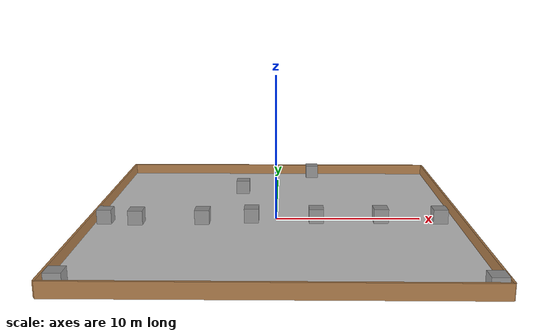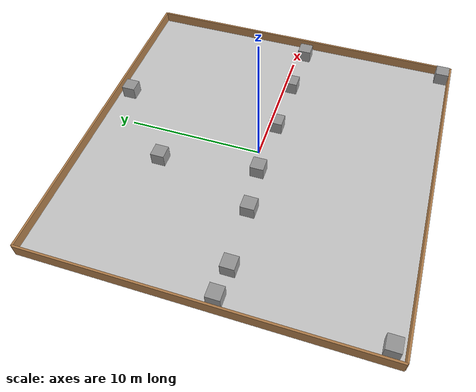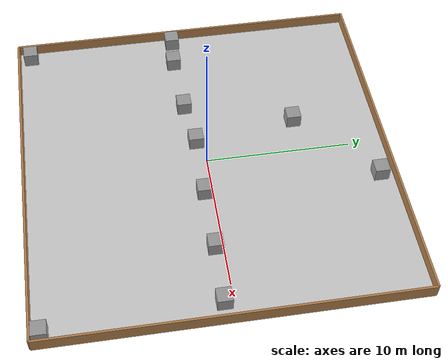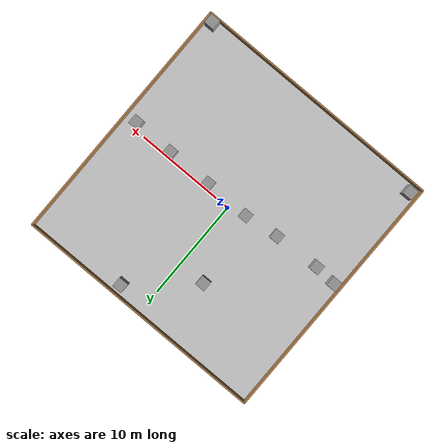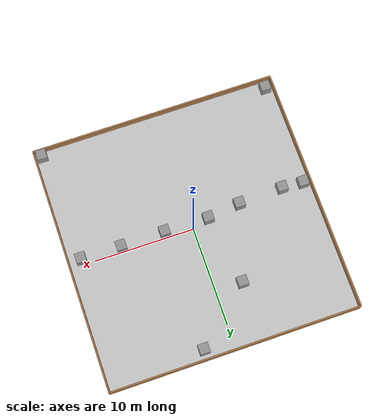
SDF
<sdf version="1.7">
 <world name="default">
  <light name="sun" type="directional">
   <pose>0 0 10 0 -0 0</pose>
   <diffuse>0.8 0.8 0.8 1</diffuse>
   <specular>0.2 0.2 0.2 1</specular>
   <attenuation>
    <range>1000</range>
    <constant>0.9</constant>
    <linear>0.01</linear>
    <quadratic>0.001</quadratic>
   </attenuation>
   <direction>-0.5 0.1 -0.9</direction>
   <spot><inner_angle>0</inner_angle><outer_angle>0</outer_angle><falloff>0</falloff></spot>
  </light>
  <model name="cmp9767m_ground_3">
   <static>1</static>
   <link name="dirt">
    <collision name="collision">
     <geometry><plane><normal>0 0 1</normal><size>25 25</size></plane></geometry>
     <surface><friction><ode><mu>inf</mu><mu2>inf</mu2></ode></friction></surface>
    </collision>
    <visual name="visual">
     <cast_shadows>0</cast_shadows>
     <geometry><plane><normal>0 0 1</normal><size>25 25</size></plane></geometry>
     <material>
      <script>
       <uri>model://cmp9767m_ground_3/materials/scripts</uri>
       <uri>model://cmp9767m_ground_3/materials/textures</uri>
       <name>cmp9767m_ground_3/dirt</name>
      </script>
     </material>
    </visual>
   </link>
  </model>
  <model name="cmp9767m_enclosure">
   <link name="Wall_0">
    <pose>0 12.5 0 0 -0 0</pose>
    <inertial>
     <mass>1</mass>
     <inertia><ixx>1</ixx><ixy>0</ixy><ixz>0</ixz><iyy>1</iyy><iyz>0</iyz><izz>1</izz></inertia>
    </inertial>
    <visual name="Wall_0_Visual">
     <pose>0 0 0.25 0 -0 0</pose>
     <geometry><box><size>25 0.15 1</size></box></geometry>
     <material>
      <script><uri>file://media/materials/scripts/gazebo.material</uri><name>Gazebo/Wood</name></script>
      <ambient>1 1 1 1</ambient>
      <shader type="pixel"><normal_map>__default__</normal_map></shader>
      <diffuse>1 1 1 1</diffuse>
      <specular>0.2 0.2 0.2 1</specular>
      <emissive>0 0 0 1</emissive>
     </material>
     <meta><layer>0</layer></meta>
    </visual>
    <collision name="Wall_0_Collision">
     <pose>0 0 0.25 0 -0 0</pose>
     <geometry><box><size>25 0.15 1</size></box></geometry>
     <surface>
      <friction>
       <ode><mu>1</mu><mu2>1</mu2><fdir1>0 0 0</fdir1><slip1>0</slip1><slip2>0</slip2></ode>
       <torsional>
        <coefficient>1</coefficient>
        <patch_radius>0</patch_radius>
        <surface_radius>0</surface_radius>
        <use_patch_radius>1</use_patch_radius>
        <ode><slip>0</slip></ode>
       </torsional>
      </friction>
      <bounce><restitution_coefficient>0</restitution_coefficient><threshold>1e+06</threshold></bounce>
      <contact>
       <collide_without_contact>0</collide_without_contact>
       <collide_without_contact_bitmask>1</collide_without_contact_bitmask>
       <collide_bitmask>1</collide_bitmask>
       <ode>
        <soft_cfm>0</soft_cfm>
        <soft_erp>0.2</soft_erp>
        <kp>1e+13</kp>
        <kd>1</kd>
        <max_vel>0.01</max_vel>
        <min_depth>0</min_depth>
       </ode>
       <bullet>
        <split_impulse>1</split_impulse>
        <split_impulse_penetration_threshold>-0.01</split_impulse_penetration_threshold>
        <soft_cfm>0</soft_cfm>
        <soft_erp>0.2</soft_erp>
        <kp>1e+13</kp>
        <kd>1</kd>
       </bullet>
      </contact>
     </surface>
    </collision>
   </link>
   <link name="Wall_1">
    <pose>0 -12.5 0 0 -0 0</pose>
    <inertial>
     <mass>1</mass>
     <inertia><ixx>1</ixx><ixy>0</ixy><ixz>0</ixz><iyy>1</iyy><iyz>0</iyz><izz>1</izz></inertia>
    </inertial>
    <visual name="Wall_1_Visual">
     <pose>0 0 0.25 0 -0 0</pose>
     <geometry><box><size>25 0.15 1</size></box></geometry>
     <material>
      <script><uri>file://media/materials/scripts/gazebo.material</uri><name>Gazebo/Wood</name></script>
      <ambient>1 1 1 1</ambient>
      <shader type="pixel"><normal_map>__default__</normal_map></shader>
      <diffuse>1 1 1 1</diffuse>
      <specular>0.2 0.2 0.2 1</specular>
      <emissive>0 0 0 1</emissive>
     </material>
     <meta><layer>0</layer></meta>
    </visual>
    <collision name="Wall_1_Collision">
     <pose>0 0 0.25 0 -0 0</pose>
     <geometry><box><size>25 0.15 1</size></box></geometry>
     <surface>
      <friction>
       <ode><mu>1</mu><mu2>1</mu2><fdir1>0 0 0</fdir1><slip1>0</slip1><slip2>0</slip2></ode>
       <torsional>
        <coefficient>1</coefficient>
        <patch_radius>0</patch_radius>
        <surface_radius>0</surface_radius>
        <use_patch_radius>1</use_patch_radius>
        <ode><slip>0</slip></ode>
       </torsional>
      </friction>
      <bounce><restitution_coefficient>0</restitution_coefficient><threshold>1e+06</threshold></bounce>
      <contact>
       <collide_without_contact>0</collide_without_contact>
       <collide_without_contact_bitmask>1</collide_without_contact_bitmask>
       <collide_bitmask>1</collide_bitmask>
       <ode>
        <soft_cfm>0</soft_cfm>
        <soft_erp>0.2</soft_erp>
        <kp>1e+13</kp>
        <kd>1</kd>
        <max_vel>0.01</max_vel>
        <min_depth>0</min_depth>
       </ode>
       <bullet>
        <split_impulse>1</split_impulse>
        <split_impulse_penetration_threshold>-0.01</split_impulse_penetration_threshold>
        <soft_cfm>0</soft_cfm>
        <soft_erp>0.2</soft_erp>
        <kp>1e+13</kp>
        <kd>1</kd>
       </bullet>
      </contact>
     </surface>
    </collision>
   </link>
   <link name="Wall_2">
    <pose>-12.5 0 0 0 -0 1.57</pose>
    <inertial>
     <mass>1</mass>
     <inertia><ixx>1</ixx><ixy>0</ixy><ixz>0</ixz><iyy>1</iyy><iyz>0</iyz><izz>1</izz></inertia>
    </inertial>
    <visual name="Wall_2_Visual">
     <pose>0 0 0.25 0 -0 0</pose>
     <geometry><box><size>25 0.15 1</size></box></geometry>
     <material>
      <script><uri>file://media/materials/scripts/gazebo.material</uri><name>Gazebo/Wood</name></script>
      <ambient>1 1 1 1</ambient>
      <shader type="pixel"><normal_map>__default__</normal_map></shader>
      <diffuse>1 1 1 1</diffuse>
      <specular>0.2 0.2 0.2 1</specular>
      <emissive>0 0 0 1</emissive>
     </material>
     <meta><layer>0</layer></meta>
    </visual>
    <collision name="Wall_2_Collision">
     <pose>0 0 0.25 0 -0 0</pose>
     <geometry><box><size>25 0.15 1</size></box></geometry>
     <surface>
      <friction>
       <ode><mu>1</mu><mu2>1</mu2><fdir1>0 0 0</fdir1><slip1>0</slip1><slip2>0</slip2></ode>
       <torsional>
        <coefficient>1</coefficient>
        <patch_radius>0</patch_radius>
        <surface_radius>0</surface_radius>
        <use_patch_radius>1</use_patch_radius>
        <ode><slip>0</slip></ode>
       </torsional>
      </friction>
      <bounce><restitution_coefficient>0</restitution_coefficient><threshold>1e+06</threshold></bounce>
      <contact>
       <collide_without_contact>0</collide_without_contact>
       <collide_without_contact_bitmask>1</collide_without_contact_bitmask>
       <collide_bitmask>1</collide_bitmask>
       <ode>
        <soft_cfm>0</soft_cfm>
        <soft_erp>0.2</soft_erp>
        <kp>1e+13</kp>
        <kd>1</kd>
        <max_vel>0.01</max_vel>
        <min_depth>0</min_depth>
       </ode>
       <bullet>
        <split_impulse>1</split_impulse>
        <split_impulse_penetration_threshold>-0.01</split_impulse_penetration_threshold>
        <soft_cfm>0</soft_cfm>
        <soft_erp>0.2</soft_erp>
        <kp>1e+13</kp>
        <kd>1</kd>
       </bullet>
      </contact>
     </surface>
    </collision>
   </link>
   <link name="Wall_3">
    <pose>12.5 0 0 0 -0 1.57</pose>
    <inertial>
     <mass>1</mass>
     <inertia><ixx>1</ixx><ixy>0</ixy><ixz>0</ixz><iyy>1</iyy><iyz>0</iyz><izz>1</izz></inertia>
    </inertial>
    <visual name="Wall_3_Visual">
     <pose>0 0 0.25 0 -0 0</pose>
     <geometry><box><size>25 0.15 1</size></box></geometry>
     <material>
      <script><uri>file://media/materials/scripts/gazebo.material</uri><name>Gazebo/Wood</name></script>
      <ambient>1 1 1 1</ambient>
      <shader type="pixel"><normal_map>__default__</normal_map></shader>
      <diffuse>1 1 1 1</diffuse>
      <specular>0.2 0.2 0.2 1</specular>
      <emissive>0 0 0 1</emissive>
     </material>
     <meta><layer>0</layer></meta>
    </visual>
    <collision name="Wall_3_Collision">
     <pose>0 0 0.25 0 -0 0</pose>
     <geometry><box><size>25 0.15 1</size></box></geometry>
     <surface>
      <friction>
       <ode><mu>1</mu><mu2>1</mu2><fdir1>0 0 0</fdir1><slip1>0</slip1><slip2>0</slip2></ode>
       <torsional>
        <coefficient>1</coefficient>
        <patch_radius>0</patch_radius>
        <surface_radius>0</surface_radius>
        <use_patch_radius>1</use_patch_radius>
        <ode><slip>0</slip></ode>
       </torsional>
      </friction>
      <bounce><restitution_coefficient>0</restitution_coefficient><threshold>1e+06</threshold></bounce>
      <contact>
       <collide_without_contact>0</collide_without_contact>
       <collide_without_contact_bitmask>1</collide_without_contact_bitmask>
       <collide_bitmask>1</collide_bitmask>
       <ode>
        <soft_cfm>0</soft_cfm>
        <soft_erp>0.2</soft_erp>
        <kp>1e+13</kp>
        <kd>1</kd>
        <max_vel>0.01</max_vel>
        <min_depth>0</min_depth>
       </ode>
       <bullet>
        <split_impulse>1</split_impulse>
        <split_impulse_penetration_threshold>-0.01</split_impulse_penetration_threshold>
        <soft_cfm>0</soft_cfm>
        <soft_erp>0.2</soft_erp>
        <kp>1e+13</kp>
        <kd>1</kd>
       </bullet>
      </contact>
     </surface>
    </collision>
   </link>
   <static>1</static>
  </model>
  <physics type="ode">
   <real_time_update_rate>200</real_time_update_rate>
   <real_time_factor>1</real_time_factor>
   <max_step_size>0.005</max_step_size>
  </physics>
  <gravity>0 0 -9.8</gravity>
  <magnetic_field>6e-06 2.3e-05 -4.2e-05</magnetic_field>
  <atmosphere type="adiabatic"/>
  <scene><ambient>0.4 0.4 0.4 1</ambient><background>0.7 0.7 0.7 1</background><shadows>1</shadows></scene>
  <spherical_coordinates>
   <surface_model>EARTH_WGS84</surface_model>
   <latitude_deg>0</latitude_deg>
   <longitude_deg>0</longitude_deg>
   <elevation>0</elevation>
   <heading_deg>0</heading_deg>
  </spherical_coordinates>
  <model name="unit_box">
   <pose>11.226 -0.629596 0.499902 0.000196 -0 -1e-06</pose>
   <link name="link">
    <inertial>
     <mass>1</mass>
     <inertia>
      <ixx>0.166667</ixx>
      <ixy>0</ixy>
      <ixz>0</ixz>
      <iyy>0.166667</iyy>
      <iyz>0</iyz>
      <izz>0.166667</izz>
     </inertia>
    </inertial>
    <collision name="collision"><geometry><box><size>1 1 1</size></box></geometry></collision>
    <visual name="visual">
     <geometry><box><size>1 1 1</size></box></geometry>
     <material>
      <script><name>Gazebo/Grey</name><uri>file://media/materials/scripts/gazebo.material</uri></script>
     </material>
    </visual>
   </link>
  </model>
  <model name="unit_box_0">
   <pose>7.18363 -0.540158 0.5 0 0 -1e-06</pose>
   <link name="link">
    <inertial>
     <mass>1</mass>
     <inertia>
      <ixx>0.166667</ixx>
      <ixy>0</ixy>
      <ixz>0</ixz>
      <iyy>0.166667</iyy>
      <iyz>0</iyz>
      <izz>0.166667</izz>
     </inertia>
    </inertial>
    <collision name="collision"><geometry><box><size>1 1 1</size></box></geometry></collision>
    <visual name="visual">
     <geometry><box><size>1 1 1</size></box></geometry>
     <material>
      <script><name>Gazebo/Grey</name><uri>file://media/materials/scripts/gazebo.material</uri></script>
     </material>
    </visual>
   </link>
  </model>
  <model name="unit_box_1">
   <pose>2.75262 -0.570699 0.5 0 -0 0</pose>
   <link name="link">
    <inertial>
     <mass>1</mass>
     <inertia>
      <ixx>0.166667</ixx>
      <ixy>0</ixy>
      <ixz>0</ixz>
      <iyy>0.166667</iyy>
      <iyz>0</iyz>
      <izz>0.166667</izz>
     </inertia>
    </inertial>
    <collision name="collision"><geometry><box><size>1 1 1</size></box></geometry></collision>
    <visual name="visual">
     <geometry><box><size>1 1 1</size></box></geometry>
     <material>
      <script><name>Gazebo/Grey</name><uri>file://media/materials/scripts/gazebo.material</uri></script>
     </material>
    </visual>
   </link>
  </model>
  <model name="unit_box_2">
   <pose>-1.70737 -0.510901 0.499902 -0.000196 0 0</pose>
   <link name="link">
    <inertial>
     <mass>1</mass>
     <inertia>
      <ixx>0.166667</ixx>
      <ixy>0</ixy>
      <ixz>0</ixz>
      <iyy>0.166667</iyy>
      <iyz>0</iyz>
      <izz>0.166667</izz>
     </inertia>
    </inertial>
    <collision name="collision"><geometry><box><size>1 1 1</size></box></geometry></collision>
    <visual name="visual">
     <geometry><box><size>1 1 1</size></box></geometry>
     <material>
      <script><name>Gazebo/Grey</name><uri>file://media/materials/scripts/gazebo.material</uri></script>
     </material>
    </visual>
   </link>
  </model>
  <model name="unit_box_3">
   <pose>-5.05951 -0.900426 0.5 0 -0 0</pose>
   <link name="link">
    <inertial>
     <mass>1</mass>
     <inertia>
      <ixx>0.166667</ixx>
      <ixy>0</ixy>
      <ixz>0</ixz>
      <iyy>0.166667</iyy>
      <iyz>0</iyz>
      <izz>0.166667</izz>
     </inertia>
    </inertial>
    <collision name="collision"><geometry><box><size>1 1 1</size></box></geometry></collision>
    <visual name="visual">
     <geometry><box><size>1 1 1</size></box></geometry>
     <material>
      <script><name>Gazebo/Grey</name><uri>file://media/materials/scripts/gazebo.material</uri></script>
     </material>
    </visual>
   </link>
  </model>
  <model name="unit_box_4">
   <pose>-9.57788 -1.0804 0.5 0 -0 0</pose>
   <link name="link">
    <inertial>
     <mass>1</mass>
     <inertia>
      <ixx>0.166667</ixx>
      <ixy>0</ixy>
      <ixz>0</ixz>
      <iyy>0.166667</iyy>
      <iyz>0</iyz>
      <izz>0.166667</izz>
     </inertia>
    </inertial>
    <collision name="collision"><geometry><box><size>1 1 1</size></box></geometry></collision>
    <visual name="visual">
     <geometry><box><size>1 1 1</size></box></geometry>
     <material>
      <script><name>Gazebo/Grey</name><uri>file://media/materials/scripts/gazebo.material</uri></script>
     </material>
    </visual>
   </link>
  </model>
  <model name="unit_box_5">
   <pose>-11.7326 -0.930815 0.499902 0.000196 -0 -1e-06</pose>
   <link name="link">
    <inertial>
     <mass>1</mass>
     <inertia>
      <ixx>0.166667</ixx>
      <ixy>0</ixy>
      <ixz>0</ixz>
      <iyy>0.166667</iyy>
      <iyz>0</iyz>
      <izz>0.166667</izz>
     </inertia>
    </inertial>
    <collision name="collision"><geometry><box><size>1 1 1</size></box></geometry></collision>
    <visual name="visual">
     <geometry><box><size>1 1 1</size></box></geometry>
     <material>
      <script><name>Gazebo/Grey</name><uri>file://media/materials/scripts/gazebo.material</uri></script>
     </material>
    </visual>
   </link>
  </model>
  <model name="unit_box_6">
   <pose>11.7948 -11.887 0.5 0 0 -1e-06</pose>
   <link name="link">
    <inertial>
     <mass>1</mass>
     <inertia>
      <ixx>0.166667</ixx>
      <ixy>0</ixy>
      <ixz>0</ixz>
      <iyy>0.166667</iyy>
      <iyz>0</iyz>
      <izz>0.166667</izz>
     </inertia>
    </inertial>
    <collision name="collision"><geometry><box><size>1 1 1</size></box></geometry></collision>
    <visual name="visual">
     <geometry><box><size>1 1 1</size></box></geometry>
     <material>
      <script><name>Gazebo/Grey</name><uri>file://media/materials/scripts/gazebo.material</uri></script>
     </material>
    </visual>
   </link>
  </model>
  <model name="unit_box_7">
   <pose>-11.6728 -11.6148 0.5 0 -0 0</pose>
   <link name="link">
    <inertial>
     <mass>1</mass>
     <inertia>
      <ixx>0.166667</ixx>
      <ixy>0</ixy>
      <ixz>0</ixz>
      <iyy>0.166667</iyy>
      <iyz>0</iyz>
      <izz>0.166667</izz>
     </inertia>
    </inertial>
    <collision name="collision"><geometry><box><size>1 1 1</size></box></geometry></collision>
    <visual name="visual">
     <geometry><box><size>1 1 1</size></box></geometry>
     <material>
      <script><name>Gazebo/Grey</name><uri>file://media/materials/scripts/gazebo.material</uri></script>
     </material>
    </visual>
   </link>
  </model>
  <model name="unit_box_8">
   <pose>2.90231 11.4928 0.499902 -0.000196 0 0</pose>
   <link name="link">
    <inertial>
     <mass>1</mass>
     <inertia>
      <ixx>0.166667</ixx>
      <ixy>0</ixy>
      <ixz>0</ixz>
      <iyy>0.166667</iyy>
      <iyz>0</iyz>
      <izz>0.166667</izz>
     </inertia>
    </inertial>
    <collision name="collision"><geometry><box><size>1 1 1</size></box></geometry></collision>
    <visual name="visual">
     <geometry><box><size>1 1 1</size></box></geometry>
     <material>
      <script><name>Gazebo/Grey</name><uri>file://media/materials/scripts/gazebo.material</uri></script>
     </material>
    </visual>
   </link>
  </model>
  <model name="unit_box_9">
   <pose>-2.69511 6.58266 0.5 0 -0 0</pose>
   <link name="link">
    <inertial>
     <mass>1</mass>
     <inertia>
      <ixx>0.166667</ixx>
      <ixy>0</ixy>
      <ixz>0</ixz>
      <iyy>0.166667</iyy>
      <iyz>0</iyz>
      <izz>0.166667</izz>
     </inertia>
    </inertial>
    <collision name="collision"><geometry><box><size>1 1 1</size></box></geometry></collision>
    <visual name="visual">
     <geometry><box><size>1 1 1</size></box></geometry>
     <material>
      <script><name>Gazebo/Grey</name><uri>file://media/materials/scripts/gazebo.material</uri></script>
     </material>
    </visual>
   </link>
  </model>
 </world>
</sdf>
